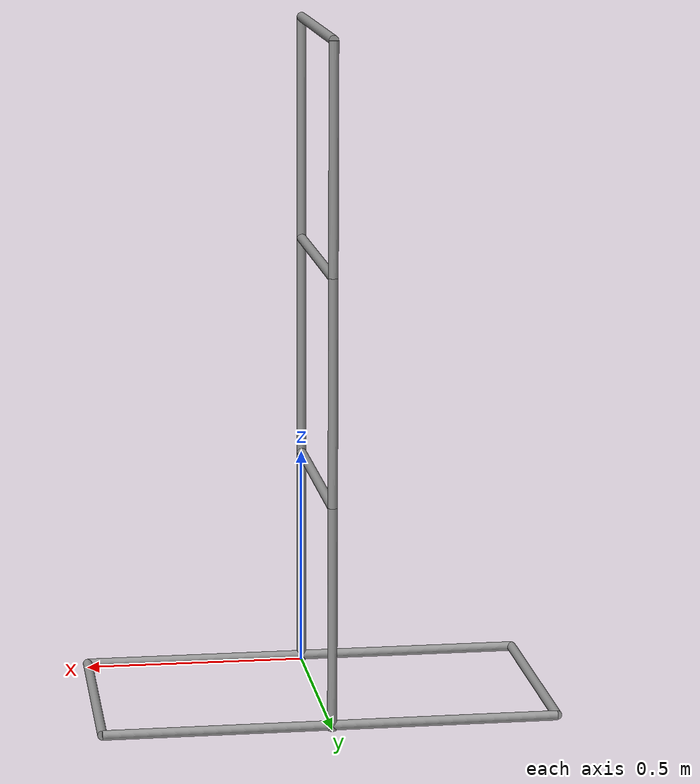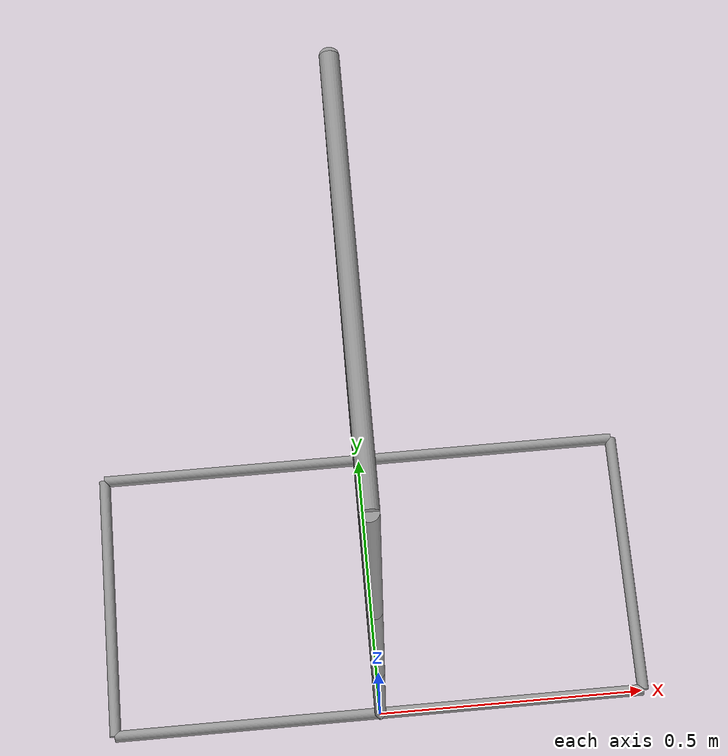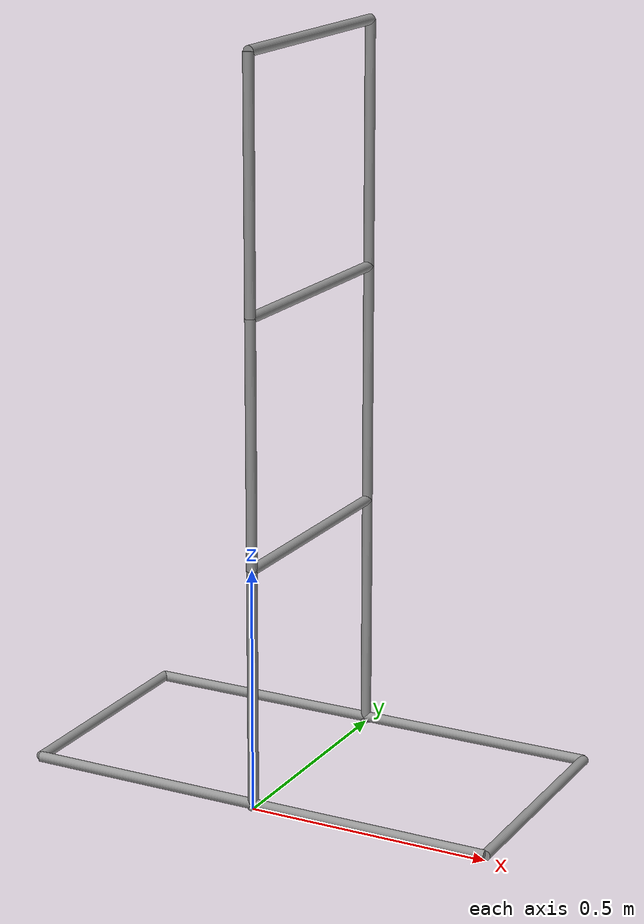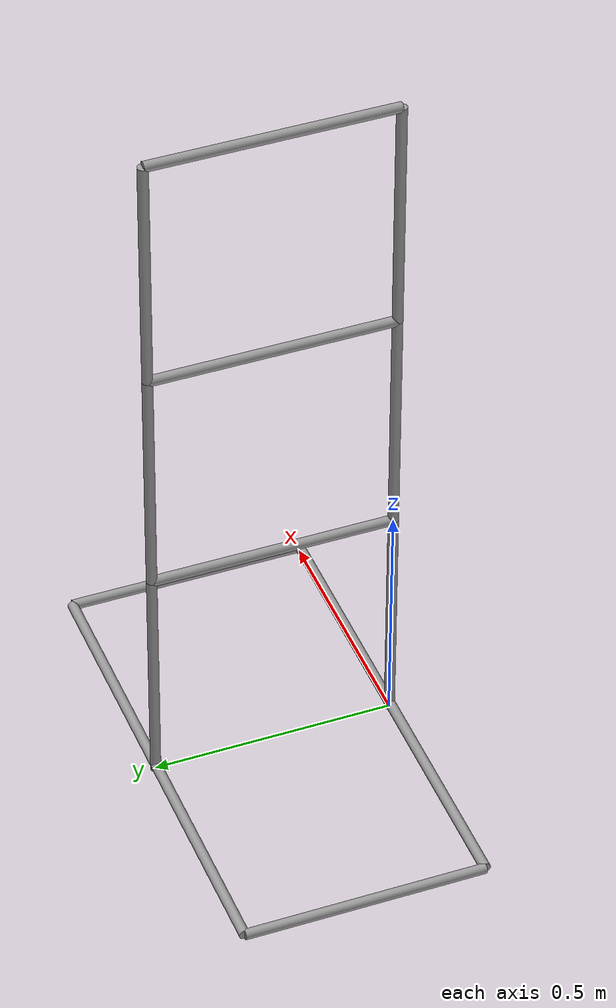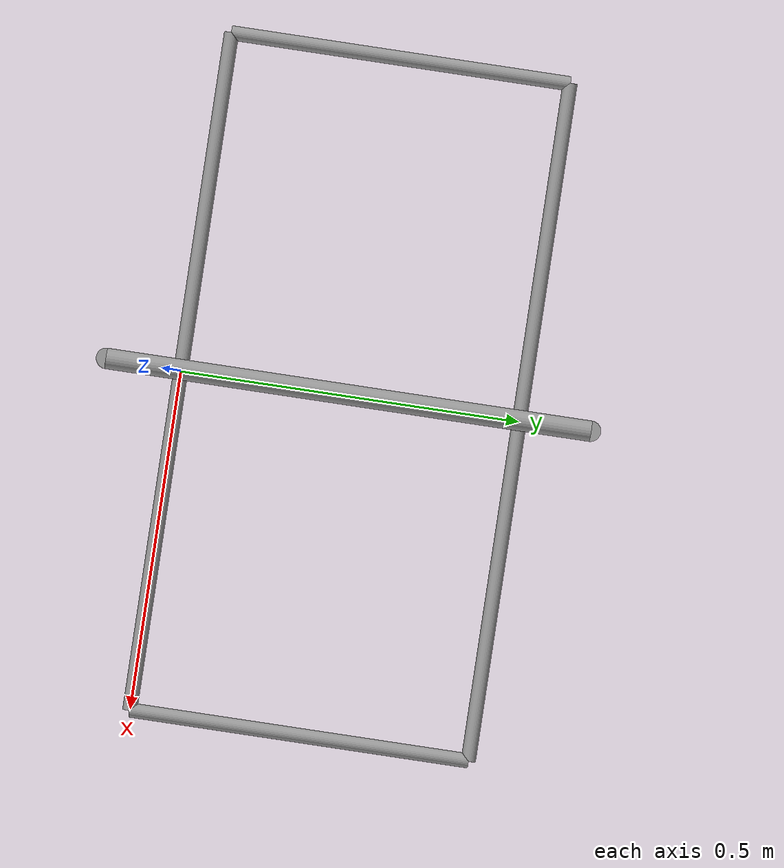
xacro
<?xml version="1.0"?>
<!-- ros2 run xacro xacro drone_gate.urdf.xacro prefix:=gate > drone_gate.urdf -->
<robot xmlns:xacro="http://ros.org/wiki/xacro" name="$(arg prefix)">
  <xacro:arg name="prefix"      default="gateA"/>
  <xacro:arg name="pipe_length" default="0.5"/>     <!-- metres for regular segments; 0.5=small 3/4" PVC, 1.0=BAG 1" PVC -->
  <xacro:arg name="base_height" default="$(arg pipe_length)"/> <!-- first vertical segment height -->
  <xacro:arg name="pipe_radius" default="0.01065"/> <!-- 0.01065=3/4" PVC, 0.01670=1" PVC -->

  <xacro:property name="pipe_radius" value="$(arg pipe_radius)"/>
  <xacro:property name="pipe_length" value="$(arg pipe_length)"/>
  <xacro:property name="base_height" value="$(arg base_height)"/>
  <xacro:property name="gate_height" value="${base_height + 2*pipe_length}"/>

  <!-- Visual+collision block for one pipe segment at a given origin -->
  <xacro:macro name="pipe_visual" params="xyz rpy length">
    <visual>
      <origin xyz="${xyz}" rpy="${rpy}"/>
      <geometry>
        <cylinder length="${length}" radius="${pipe_radius}"/>
      </geometry>
      <material name="gray">
        <color rgba="0.6 0.6 0.6 1.0"/>
      </material>
    </visual>
    <collision>
      <origin xyz="${xyz}" rpy="${rpy}"/>
      <geometry>
        <cylinder length="${length}" radius="${pipe_radius}"/>
      </geometry>
    </collision>
  </xacro:macro>

  <!-- Root link with all gate geometry. -->
  <link name="$(arg prefix)_base_link">
    <inertial>
      <mass value="5.0"/>
      <origin xyz="0 ${pipe_length/2} ${gate_height/2}" rpy="0 0 0"/>
      <inertia
        ixx="${5.0/12.0 * (pipe_length**2 + gate_height**2)}"
        iyy="${5.0/12.0 * ((2*pipe_length)**2 + gate_height**2)}"
        izz="${5.0/12.0 * ((2*pipe_length)**2 + pipe_length**2)}"
        ixy="0" ixz="0" iyz="0"/>
    </inertial>

    <!-- BASE LOOP — raised by pipe_radius so pipes sit on the floor surface -->
    <xacro:pipe_visual xyz="${-pipe_length/2} 0 ${pipe_radius}"              rpy="0 1.5708 0" length="${pipe_length}"/>
    <xacro:pipe_visual xyz="${pipe_length/2} 0 ${pipe_radius}"               rpy="0 1.5708 0" length="${pipe_length}"/>
    <xacro:pipe_visual xyz="${-pipe_length/2} ${pipe_length} ${pipe_radius}" rpy="0 1.5708 0" length="${pipe_length}"/>
    <xacro:pipe_visual xyz="${pipe_length/2} ${pipe_length} ${pipe_radius}"  rpy="0 1.5708 0" length="${pipe_length}"/>
    <xacro:pipe_visual xyz="${-pipe_length} ${pipe_length/2} ${pipe_radius}" rpy="1.5708 0 0" length="${pipe_length}"/>
    <xacro:pipe_visual xyz="${pipe_length} ${pipe_length/2} ${pipe_radius}"  rpy="1.5708 0 0" length="${pipe_length}"/>

    <!-- VERTICAL POSTS -->
    <xacro:pipe_visual xyz="0 0 ${base_height/2}"                  rpy="0 0 0" length="${base_height}"/>
    <xacro:pipe_visual xyz="0 0 ${base_height + pipe_length/2}"    rpy="0 0 0" length="${pipe_length}"/>
    <xacro:pipe_visual xyz="0 0 ${base_height + pipe_length*1.5}"  rpy="0 0 0" length="${pipe_length}"/>
    <xacro:pipe_visual xyz="0 ${pipe_length} ${base_height/2}"                 rpy="0 0 0" length="${base_height}"/>
    <xacro:pipe_visual xyz="0 ${pipe_length} ${base_height + pipe_length/2}"   rpy="0 0 0" length="${pipe_length}"/>
    <xacro:pipe_visual xyz="0 ${pipe_length} ${base_height + pipe_length*1.5}" rpy="0 0 0" length="${pipe_length}"/>

    <!-- CROSSBARS -->
    <xacro:pipe_visual xyz="0 ${pipe_length/2} ${base_height}"                 rpy="1.5708 0 0" length="${pipe_length}"/>
    <xacro:pipe_visual xyz="0 ${pipe_length/2} ${base_height + pipe_length}"   rpy="1.5708 0 0" length="${pipe_length}"/>
    <xacro:pipe_visual xyz="0 ${pipe_length/2} ${base_height + 2*pipe_length}" rpy="1.5708 0 0" length="${pipe_length}"/>
  </link>

  <!-- Target frames used by trajectory planners and RViz course displays. -->
  <link name="$(arg prefix)_target_1"/>
  <joint name="$(arg prefix)_joint_target_1" type="fixed">
    <parent link="$(arg prefix)_base_link"/>
    <child link="$(arg prefix)_target_1"/>
    <origin xyz="0 ${pipe_length/2} ${base_height + pipe_length/2}" rpy="0 0 0"/>
  </joint>

  <link name="$(arg prefix)_target_2"/>
  <joint name="$(arg prefix)_joint_target_2" type="fixed">
    <parent link="$(arg prefix)_base_link"/>
    <child link="$(arg prefix)_target_2"/>
    <origin xyz="0 ${pipe_length/2} ${base_height + pipe_length*1.5}" rpy="0 0 0"/>
  </joint>

  <gazebo reference="$(arg prefix)_base_link">
    <visual>
      <cast_shadows>false</cast_shadows>
    </visual>
  </gazebo>

  <!-- static must be on the model element, not a link reference -->
  <gazebo>
    <static>true</static>
  </gazebo>

</robot>
